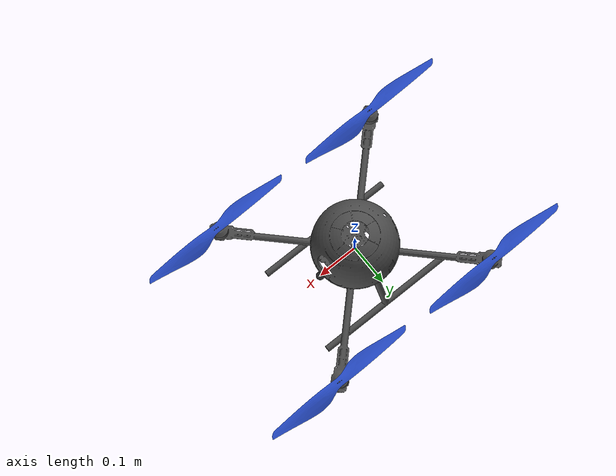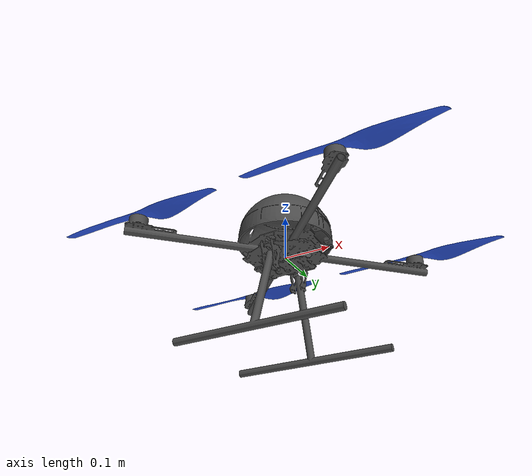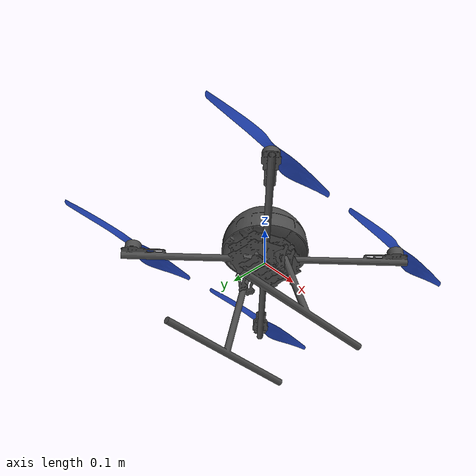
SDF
<?xml version='1.3'?>
<sdf version='1.6'>
  <model name='tarot_650'>

  <!-- LINKS -->

    <link name='base_link'>
      <pose>0 0 0 0 0 0</pose>
      <inertial>
        <pose>0 0 0 0 0 0</pose>
        <mass>2.620</mass>
        <inertia>
          <ixx>0.042467</ixx>
          <ixy>0</ixy>
          <ixz>0</ixz>
          <iyy>0.043367</iyy>
          <iyz>0</iyz>
          <izz>0.063267</izz>
        </inertia>
      </inertial>
      <collision name='base_link_inertia_collision'>
        <pose>0 0 -0.03 0 -0 0</pose>
        <geometry>
          <box>
            <size>0.4796194077712559 0.4796194077712559 0.33</size>
          </box>
        </geometry>
        <surface>
          <contact>
            <ode>
              <min_depth>0.001</min_depth>
              <max_vel>0</max_vel>
            </ode>
          </contact>
          <friction>
            <ode/>
          </friction>
        </surface>
      </collision>
      <visual name='base_link_inertia_visual'>
        <pose>0.241 0.241 -0.2 0 0 3.141590</pose>
        <geometry>
          <mesh>
            <uri>model://tarot_650/meshes/TarotGazebo.STL</uri>
            <scale>0.001 0.001 0.001</scale>
          </mesh>
        </geometry>
        <material>
          <script>
            <name>Gazebo/DarkGrey</name>
            <uri>__default__</uri>
          </script>
        </material>
      </visual>
      <gravity>1</gravity>
      <velocity_decay/>
    </link>

    <link name='/imu_link'>
      <pose>0 0 0 0 0 0</pose>
      <inertial>
        <pose>0 0 0 0 0 0</pose>
        <mass>0.015</mass>
        <inertia>
          <ixx>1e-05</ixx>
          <ixy>0</ixy>
          <ixz>0</ixz>
          <iyy>1e-05</iyy>
          <iyz>0</iyz>
          <izz>1e-05</izz>
        </inertia>
      </inertial>
    </link>

    <link name="rotor_0">

     <gravity>1</gravity>
      <velocity_decay/>

      <pose>0.22 -0.22 0.05 0 0 0</pose>
      <inertial>
          <mass>0.019</mass>
          <inertia>
            <ixx>6.349166666666668e-07</ixx>
            <iyy>4.310783333333334e-05</iyy>
            <izz>4.373958333333334e-05</izz>
          </inertia>
        </inertial>
      <visual name="rotor_0_visual">
        <pose>-0.1905 0.02523 -0.01 1.571 0 0</pose>
        <geometry>
          <mesh>
            <scale>0.001 0.001 0.001</scale>
            <uri>model://tarot_650/meshes/TarotProp.STL</uri>
          </mesh>
        </geometry>
        <material>
          <script>
            <name>Gazebo/Blue</name>
            <uri>file://media/materials/scripts/gazebo.material</uri>
          </script>
        </material>
      </visual>
    </link>

    <link name="rotor_1">

     <gravity>1</gravity>

      <velocity_decay/>

      <pose>-0.22 0.22 0.05 0 0 0</pose>
      <inertial>
          <mass>0.019</mass>
          <inertia>
            <ixx>6.349166666666668e-07</ixx>
            <iyy>4.310783333333334e-05</iyy>
            <izz>4.373958333333334e-05</izz>
          </inertia>
        </inertial>
      <visual name="rotor_1_visual">
        <pose>-0.1905 0.02523 -0.01 1.571 0 0</pose>
        <geometry>
          <mesh>
            <scale>0.001 0.001 0.001</scale>
            <uri>model://tarot_650/meshes/TarotProp.STL</uri>
          </mesh>
        </geometry>
        <material>
          <script>
            <name>Gazebo/Blue</name>
            <uri>file://media/materials/scripts/gazebo.material</uri>
          </script>
        </material>
      </visual>
    </link>

    <link name="rotor_2">

     <gravity>1</gravity>

      <velocity_decay/>

      <pose>0.22 0.22 0.05 0 0 0</pose>
      <inertial>
          <mass>0.019</mass>
          <inertia>
            <ixx>6.349166666666668e-07</ixx>
            <iyy>4.310783333333334e-05</iyy>
            <izz>4.373958333333334e-05</izz>
          </inertia>
        </inertial>
      <visual name="rotor_2_visual">
        <pose>-0.1905 0.02523 -0.01 1.571 0 0</pose>
        <geometry>
          <mesh>
            <scale>0.001 0.001 0.001</scale>
            <uri>model://tarot_650/meshes/TarotProp.STL</uri>
          </mesh>
        </geometry>
        <material>
          <script>
            <name>Gazebo/Blue</name>
            <uri>file://media/materials/scripts/gazebo.material</uri>
          </script>
        </material>
      </visual>
    </link>

    <link name="rotor_3">

     <gravity>1</gravity>

      <velocity_decay/>

      <pose>-0.22 -0.22 0.05 0 0 0</pose>
      <inertial>
          <mass>0.019</mass>
          <inertia>
            <ixx>6.349166666666668e-07</ixx>
            <iyy>4.310783333333334e-05</iyy>
            <izz>4.373958333333334e-05</izz>
          </inertia>
        </inertial>
      <visual name="rotor_3_visual">
        <pose>-0.1905 0.02523 -0.01 1.571 0 0</pose>
        <geometry>
          <mesh>
            <scale>0.001 0.001 0.001</scale>
            <uri>model://tarot_650/meshes/TarotProp.STL</uri>
          </mesh>
        </geometry>
        <material>
          <script>
            <name>Gazebo/Blue</name>
            <uri>file://media/materials/scripts/gazebo.material</uri>
          </script>
        </material>
      </visual>
    </link>

<!-- JOINTS -->

    <joint name='/imu_joint' type='revolute'>
      <child>/imu_link</child>
      <parent>base_link</parent>
      <axis>
        <xyz>1 0 0</xyz>
        <limit>
          <lower>0</lower>
          <upper>0</upper>
          <effort>0</effort>
          <velocity>0</velocity>
        </limit>
        <dynamics>
          <spring_reference>0</spring_reference>
          <spring_stiffness>0</spring_stiffness>
        </dynamics>
        <use_parent_model_frame>1</use_parent_model_frame>
      </axis>
    </joint>

    <joint name='rotor_0_joint' type='revolute'>
      <child>rotor_0</child>
      <parent>base_link</parent>
      <axis>
        <xyz>0 0 1</xyz>
        <limit>
          <lower>-1e+16</lower>
          <upper>1e+16</upper>
        </limit>
        <dynamics>
          <spring_reference>0</spring_reference>
          <spring_stiffness>0</spring_stiffness>
        </dynamics>
        <use_parent_model_frame>1</use_parent_model_frame>
      </axis>
    </joint>

    <joint name='rotor_1_joint' type='revolute'>
      <child>rotor_1</child>
      <parent>base_link</parent>
      <axis>
        <xyz>0 0 1</xyz>
        <limit>
          <lower>-1e+16</lower>
          <upper>1e+16</upper>
        </limit>
        <dynamics>
          <spring_reference>0</spring_reference>
          <spring_stiffness>0</spring_stiffness>
        </dynamics>
        <use_parent_model_frame>1</use_parent_model_frame>
      </axis>
    </joint>

    <joint name='rotor_2_joint' type='revolute'>
      <child>rotor_2</child>
      <parent>base_link</parent>
      <axis>
        <xyz>0 0 1</xyz>
        <limit>
          <lower>-1e+16</lower>
          <upper>1e+16</upper>
        </limit>
        <dynamics>
          <spring_reference>0</spring_reference>
          <spring_stiffness>0</spring_stiffness>
        </dynamics>
        <use_parent_model_frame>1</use_parent_model_frame>
      </axis>
    </joint>

    <joint name='rotor_3_joint' type='revolute'>
      <child>rotor_3</child>
      <parent>base_link</parent>
      <axis>
        <xyz>0 0 1</xyz>
        <limit>
          <lower>-1e+16</lower>
          <upper>1e+16</upper>
        </limit>
        <dynamics>
          <spring_reference>0</spring_reference>
          <spring_stiffness>0</spring_stiffness>
        </dynamics>
        <use_parent_model_frame>1</use_parent_model_frame>
      </axis>
    </joint>

<!-- PLUGINS -->

    <plugin name='rosbag' filename='libgazebo_multirotor_base_plugin.so'>
      <robotNamespace/>
      <linkName>base_link</linkName>
      <rotorVelocitySlowdownSim>10</rotorVelocitySlowdownSim>
    </plugin>

    <plugin name='front_right_motor_model' filename='libgazebo_motor_model.so'>
      <robotNamespace/>
      <jointName>rotor_0_joint</jointName>
      <linkName>rotor_0</linkName>
      <turningDirection>ccw</turningDirection>
      <timeConstantUp>0.0125</timeConstantUp>
      <timeConstantDown>0.025</timeConstantDown>
      <maxRotVelocity>883</maxRotVelocity>
      <motorConstant>2.5911e-05</motorConstant>
      <momentConstant>0.0166605</momentConstant>
      <commandSubTopic>/gazebo/command/motor_speed</commandSubTopic>
      <motorNumber>0</motorNumber>
      <rotorDragCoefficient>0.000806428</rotorDragCoefficient>
      <rollingMomentCoefficient>1e-06</rollingMomentCoefficient>
      <motorSpeedPubTopic>/motor_speed/0</motorSpeedPubTopic>
      <rotorVelocitySlowdownSim>10</rotorVelocitySlowdownSim>
    </plugin>

    <plugin name='back_left_motor_model' filename='libgazebo_motor_model.so'>
      <robotNamespace/>
      <jointName>rotor_1_joint</jointName>
      <linkName>rotor_1</linkName>
      <turningDirection>ccw</turningDirection>
      <timeConstantUp>0.0125</timeConstantUp>
      <timeConstantDown>0.025</timeConstantDown>
      <maxRotVelocity>883</maxRotVelocity>
      <motorConstant>2.5911e-05</motorConstant>
      <momentConstant>0.0166605</momentConstant>
      <commandSubTopic>/gazebo/command/motor_speed</commandSubTopic>
      <motorNumber>1</motorNumber>
      <rotorDragCoefficient>0.000806428</rotorDragCoefficient>
      <rollingMomentCoefficient>1e-06</rollingMomentCoefficient>
      <motorSpeedPubTopic>/motor_speed/1</motorSpeedPubTopic>
      <rotorVelocitySlowdownSim>10</rotorVelocitySlowdownSim>
    </plugin>

    <plugin name='front_left_motor_model' filename='libgazebo_motor_model.so'>
      <robotNamespace/>
      <jointName>rotor_2_joint</jointName>
      <linkName>rotor_2</linkName>
      <turningDirection>cw</turningDirection>
      <timeConstantUp>0.0125</timeConstantUp>
      <timeConstantDown>0.025</timeConstantDown>
      <maxRotVelocity>883</maxRotVelocity>
      <motorConstant>2.5911e-05</motorConstant>
      <momentConstant>0.0166605</momentConstant>
      <commandSubTopic>/gazebo/command/motor_speed</commandSubTopic>
      <motorNumber>2</motorNumber>
      <rotorDragCoefficient>0.000806428</rotorDragCoefficient>
      <rollingMomentCoefficient>1e-06</rollingMomentCoefficient>
      <motorSpeedPubTopic>/motor_speed/2</motorSpeedPubTopic>
      <rotorVelocitySlowdownSim>10</rotorVelocitySlowdownSim>
    </plugin>

    <plugin name='back_right_motor_model' filename='libgazebo_motor_model.so'>
      <robotNamespace/>
      <jointName>rotor_3_joint</jointName>
      <linkName>rotor_3</linkName>
      <turningDirection>cw</turningDirection>
      <timeConstantUp>0.0125</timeConstantUp>
      <timeConstantDown>0.025</timeConstantDown>
      <maxRotVelocity>883</maxRotVelocity>
      <motorConstant>2.5911e-05</motorConstant>
      <momentConstant>0.0166605</momentConstant>
      <commandSubTopic>/gazebo/command/motor_speed</commandSubTopic>
      <motorNumber>3</motorNumber>
      <rotorDragCoefficient>0.000806428</rotorDragCoefficient>
      <rollingMomentCoefficient>1e-06</rollingMomentCoefficient>
      <motorSpeedPubTopic>/motor_speed/3</motorSpeedPubTopic>
      <rotorVelocitySlowdownSim>10</rotorVelocitySlowdownSim>
    </plugin>

    <include>
      <uri>model://gps</uri>
      <pose>0.1 0 0 0 0 0</pose>
      <name>gps0</name>
    </include>
    <joint name='gps0_joint' type='fixed'>
      <child>gps0::link</child>
      <parent>base_link</parent>
    </joint>

    <plugin name='groundtruth_plugin' filename='libgazebo_groundtruth_plugin.so'>
      <robotNamespace/>
    </plugin>

    <plugin name='magnetometer_plugin' filename='libgazebo_magnetometer_plugin.so'>
      <robotNamespace/>
      <pubRate>100</pubRate>
      <noiseDensity>0.0004</noiseDensity>
      <randomWalk>6.4e-06</randomWalk>
      <biasCorrelationTime>600</biasCorrelationTime>
      <magTopic>/mag</magTopic>
    </plugin>

    <plugin name='barometer_plugin' filename='libgazebo_barometer_plugin.so'>
      <robotNamespace/>
      <pubRate>50</pubRate>
      <baroTopic>/baro</baroTopic>
      <baroDriftPaPerSec>0</baroDriftPaPerSec>
    </plugin>

    <plugin name='mavlink_interface' filename='libgazebo_mavlink_interface.so'>
      <robotNamespace/>
      <imuSubTopic>/imu</imuSubTopic>
      <magSubTopic>/mag</magSubTopic>
      <baroSubTopic>/baro</baroSubTopic>
      <mavlink_addr>INADDR_ANY</mavlink_addr>
      <mavlink_tcp_port>4560</mavlink_tcp_port>
      <mavlink_udp_port>14560</mavlink_udp_port>
      <serialEnabled>0</serialEnabled>
      <serialDevice>/dev/ttyACM0</serialDevice>
      <baudRate>921600</baudRate>
      <qgc_addr>INADDR_ANY</qgc_addr>
      <qgc_udp_port>14550</qgc_udp_port>
      <sdk_addr>INADDR_ANY</sdk_addr>
      <sdk_udp_port>14540</sdk_udp_port>
      <hil_mode>0</hil_mode>
      <hil_state_level>0</hil_state_level>
      <send_vision_estimation>0</send_vision_estimation>
      <send_odometry>1</send_odometry>
      <enable_lockstep>1</enable_lockstep>
      <use_tcp>1</use_tcp>
      <motorSpeedCommandPubTopic>/gazebo/command/motor_speed</motorSpeedCommandPubTopic>
      <control_channels>
        <channel name='rotor1'>
          <input_index>0</input_index>
          <input_offset>0</input_offset>
          <input_scaling>1000</input_scaling>
          <zero_position_disarmed>0</zero_position_disarmed>
          <zero_position_armed>100</zero_position_armed>
          <joint_control_type>velocity</joint_control_type>
        </channel>
        <channel name='rotor2'>
          <input_index>1</input_index>
          <input_offset>0</input_offset>
          <input_scaling>1000</input_scaling>
          <zero_position_disarmed>0</zero_position_disarmed>
          <zero_position_armed>100</zero_position_armed>
          <joint_control_type>velocity</joint_control_type>
        </channel>
        <channel name='rotor3'>
          <input_index>2</input_index>
          <input_offset>0</input_offset>
          <input_scaling>1000</input_scaling>
          <zero_position_disarmed>0</zero_position_disarmed>
          <zero_position_armed>100</zero_position_armed>
          <joint_control_type>velocity</joint_control_type>
        </channel>
        <channel name='rotor4'>
          <input_index>3</input_index>
          <input_offset>0</input_offset>
          <input_scaling>1000</input_scaling>
          <zero_position_disarmed>0</zero_position_disarmed>
          <zero_position_armed>100</zero_position_armed>
          <joint_control_type>velocity</joint_control_type>
        </channel>
        <channel name='rotor5'>
          <input_index>4</input_index>
          <input_offset>1</input_offset>
          <input_scaling>324.6</input_scaling>
          <zero_position_disarmed>0</zero_position_disarmed>
          <zero_position_armed>0</zero_position_armed>
          <joint_control_type>velocity</joint_control_type>
          <joint_control_pid>
            <p>0.1</p>
            <i>0</i>
            <d>0</d>
            <iMax>0.0</iMax>
            <iMin>0.0</iMin>
            <cmdMax>2</cmdMax>
            <cmdMin>-2</cmdMin>
          </joint_control_pid>
          <joint_name>zephyr_delta_wing::propeller_joint</joint_name>
        </channel>
        <channel name='rotor6'>
          <input_index>5</input_index>
          <input_offset>0</input_offset>
          <input_scaling>0.524</input_scaling>
          <zero_position_disarmed>0</zero_position_disarmed>
          <zero_position_armed>0</zero_position_armed>
          <joint_control_type>position</joint_control_type>
          <joint_name>zephyr_delta_wing::flap_left_joint</joint_name>
          <joint_control_pid>
            <p>10.0</p>
            <i>0</i>
            <d>0</d>
            <iMax>0</iMax>
            <iMin>0</iMin>
            <cmdMax>20</cmdMax>
            <cmdMin>-20</cmdMin>
          </joint_control_pid>
        </channel>
        <channel name='rotor7'>
          <input_index>6</input_index>
          <input_offset>0</input_offset>
          <input_scaling>0.524</input_scaling>
          <zero_position_disarmed>0</zero_position_disarmed>
          <zero_position_armed>0</zero_position_armed>
          <joint_control_type>position</joint_control_type>
          <joint_name>zephyr_delta_wing::flap_right_joint</joint_name>
          <joint_control_pid>
            <p>10.0</p>
            <i>0</i>
            <d>0</d>
            <iMax>0</iMax>
            <iMin>0</iMin>
            <cmdMax>20</cmdMax>
            <cmdMin>-20</cmdMin>
          </joint_control_pid>
        </channel>
        <channel name='rotor8'>
          <input_index>7</input_index>
          <input_offset>0</input_offset>
          <input_scaling>0.524</input_scaling>
          <zero_position_disarmed>0</zero_position_disarmed>
          <zero_position_armed>0</zero_position_armed>
          <joint_control_type>position</joint_control_type>
        </channel>
      </control_channels>
    </plugin>

    <static>0</static>

    <plugin name='rotors_gazebo_imu_plugin' filename='libgazebo_imu_plugin.so'>
      <robotNamespace/>
      <linkName>/imu_link</linkName>
      <imuTopic>/imu</imuTopic>
      <gyroscopeNoiseDensity>0.00018665</gyroscopeNoiseDensity>
      <gyroscopeRandomWalk>3.8785e-05</gyroscopeRandomWalk>
      <gyroscopeBiasCorrelationTime>1000.0</gyroscopeBiasCorrelationTime>
      <gyroscopeTurnOnBiasSigma>0.0087</gyroscopeTurnOnBiasSigma>
      <accelerometerNoiseDensity>0.00186</accelerometerNoiseDensity>
      <accelerometerRandomWalk>0.006</accelerometerRandomWalk>
      <accelerometerBiasCorrelationTime>300.0</accelerometerBiasCorrelationTime>
      <accelerometerTurnOnBiasSigma>0.196</accelerometerTurnOnBiasSigma>
    </plugin>

  </model>
</sdf>

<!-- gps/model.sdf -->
<sdf version="1.6">
  <model name="gps">
    <link name="link">
      <pose>0 0 0 0 0 0</pose>
      <inertial>
        <pose>0 0 0 0 0 0</pose>
        <mass>0.015</mass>
        <inertia>
          <ixx>1e-05</ixx>
          <ixy>0</ixy>
          <ixz>0</ixz>
          <iyy>1e-05</iyy>
          <iyz>0</iyz>
          <izz>1e-05</izz>
        </inertia>
      </inertial>
      <visual name="visual">
        <geometry>
          <cylinder>
            <radius>0.01</radius>
            <length>0.002</length>
          </cylinder>
        </geometry>
        <material>
          <script>
            <name>Gazebo/Black</name>
            <uri>file://usr/share/gz/gz-sim8/media/gazebo.material</uri>
          </script>
        </material>
      </visual>
      <sensor name="gps" type="gps">
        <pose>0 0 0 0 0 0</pose>
        <update_rate>5.0</update_rate>
        <always_on>true</always_on>
        <visualize>false</visualize>
        <!-- GpsSensor noise currently not used -->
        <plugin name="gps_plugin" filename="libgazebo_gps_plugin.so">
          <robotNamespace></robotNamespace>
          <gpsNoise>true</gpsNoise>
          <gpsXYRandomWalk>2.0</gpsXYRandomWalk>
          <gpsZRandomWalk>4.0</gpsZRandomWalk>
          <gpsXYNoiseDensity>2.0e-4</gpsXYNoiseDensity>
          <gpsZNoiseDensity>4.0e-4</gpsZNoiseDensity>
          <gpsVXYNoiseDensity>0.2</gpsVXYNoiseDensity>
          <gpsVZNoiseDensity>0.4</gpsVZNoiseDensity>
        </plugin>
      </sensor>
    </link>
  </model>
</sdf>
